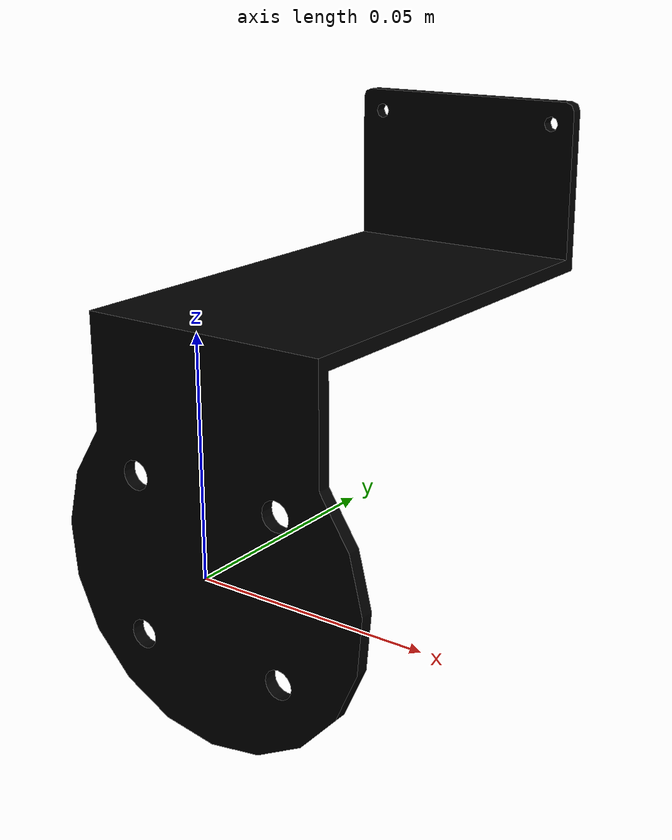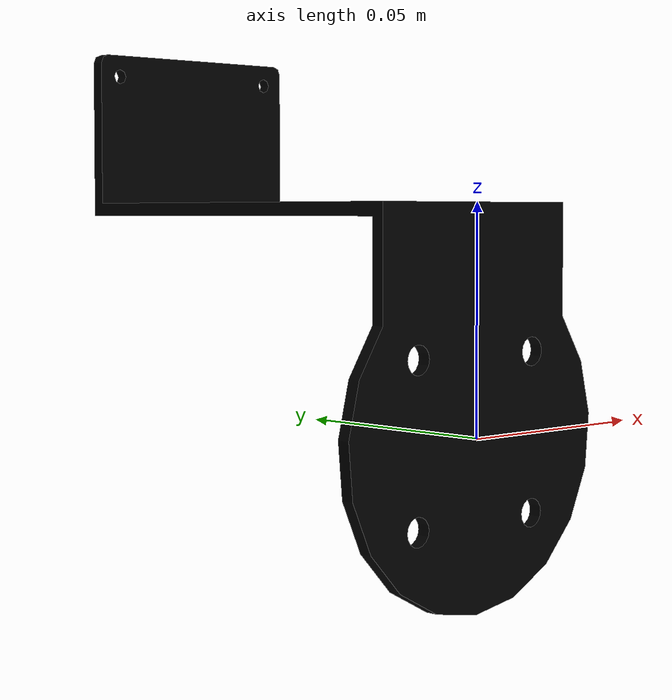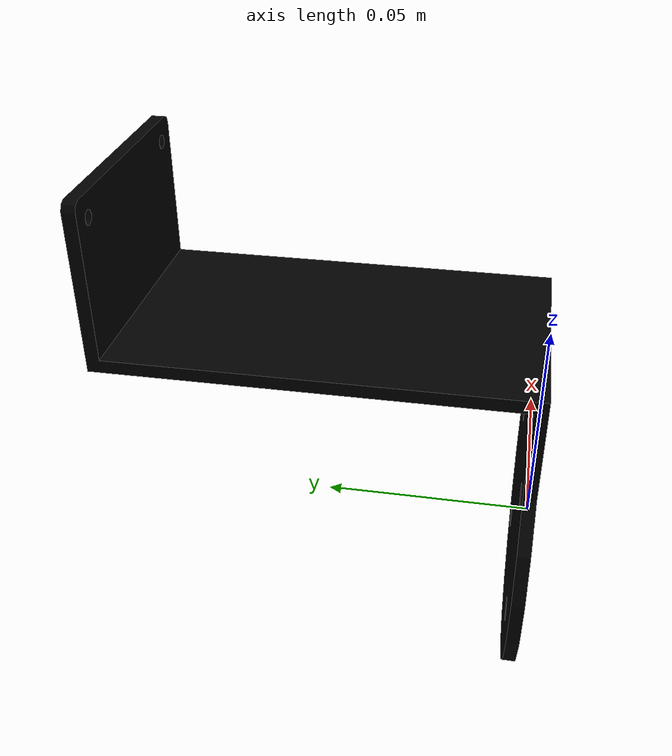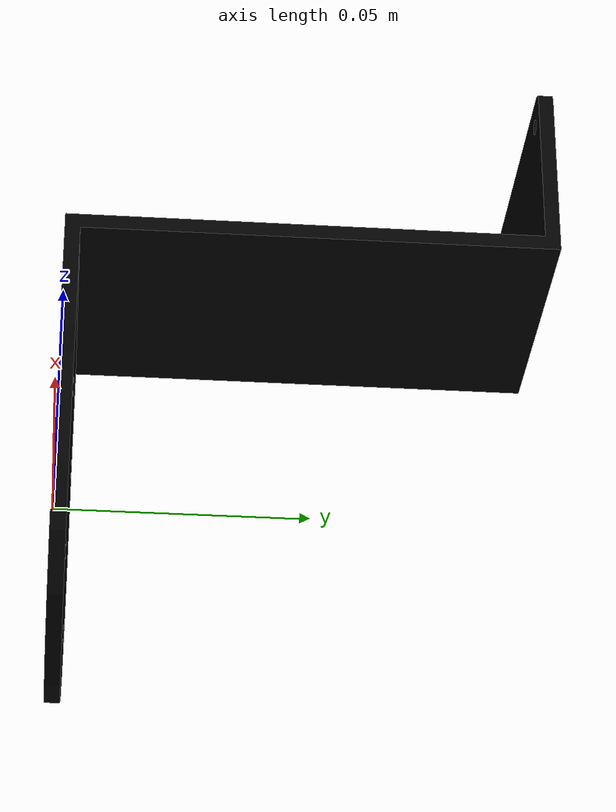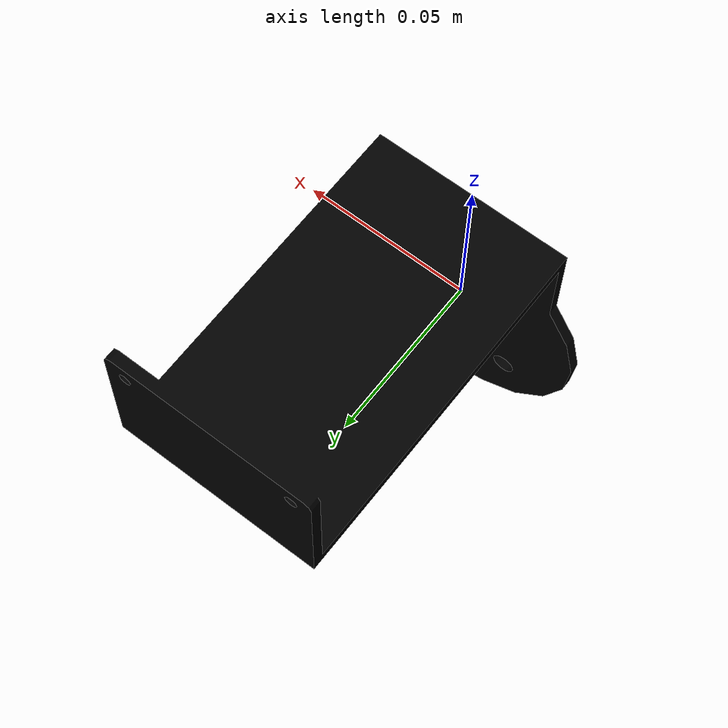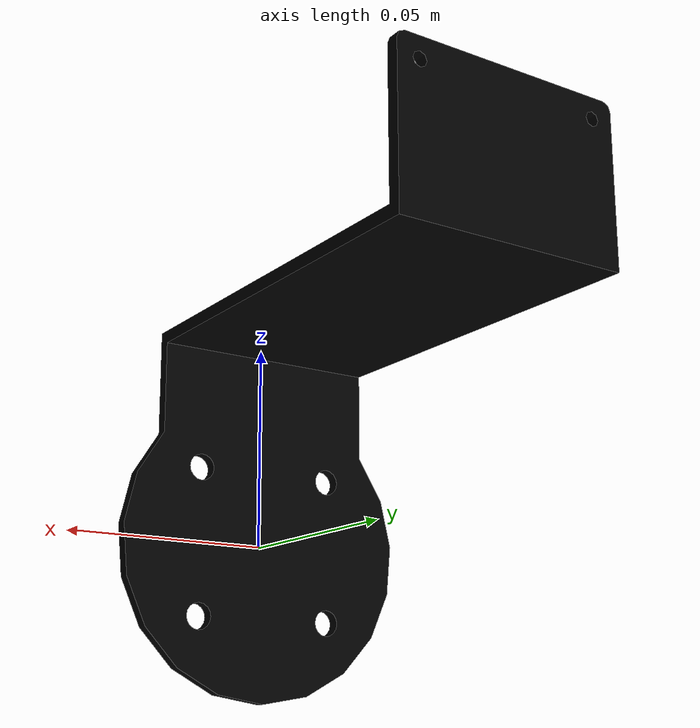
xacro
<?xml version="1.0"?>
<robot xmlns:xacro="http://wiki.ros.org/xacro" name="flage">

  <xacro:include filename="$(find flange)/urdf/flange_macro.xacro"/>
  <xacro:flange prefix="" />

  <link name="world"/>
  <joint name="world_joint" type="fixed">
    <parent link="world"/>
    <child link="flange"/>
    <origin xyz="0 0 0" rpy="0 0 0"/>
  </joint>

</robot>

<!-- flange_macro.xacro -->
<robot xmlns:xacro="http://wiki.ros.org/xacro">

  <xacro:macro name="flange" params="prefix">
    <link name="${prefix}flange">
      <inertial>
        <mass value="0.3"/>
        <inertia ixx="0.0" ixy="0.0" ixz="0.0" iyy="0.0" iyz="0.0" izz="0.0"/>
      </inertial>

      <visual>
        <origin xyz="0 0 0" rpy="0 0 0" />
        <geometry>
          <mesh filename="package://flange/meshes/flange.stl" />
        </geometry>
        <material name="">
          <color rgba="0.0 0.0 0.0 1" />
        </material>
      </visual>

      <collision>
        <geometry>
          <mesh filename="package://flange/meshes/flange.stl" />
        </geometry>
      </collision>
    </link>

    <link name="${prefix}flange_left_bolt"/>

    <joint name="flange-flange_left_bolt" type="fixed">
    <origin xyz="-0.0225 0.097 0.08" rpy="0 0 0"/>
      <parent link="${prefix}flange"/>
      <child link="${prefix}flange_left_bolt" />
    </joint>

    <gazebo reference="${prefix}flange">
      <material>Gazebo/Black</material>
    </gazebo>

  </xacro:macro>

</robot>
